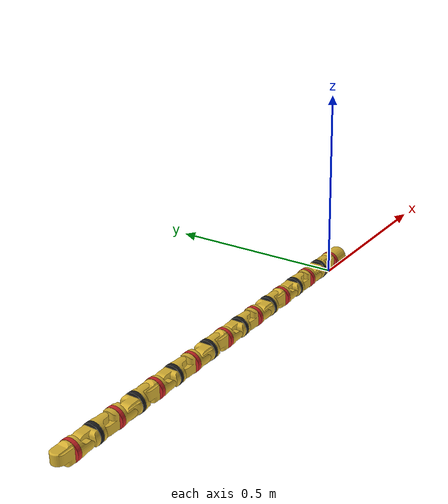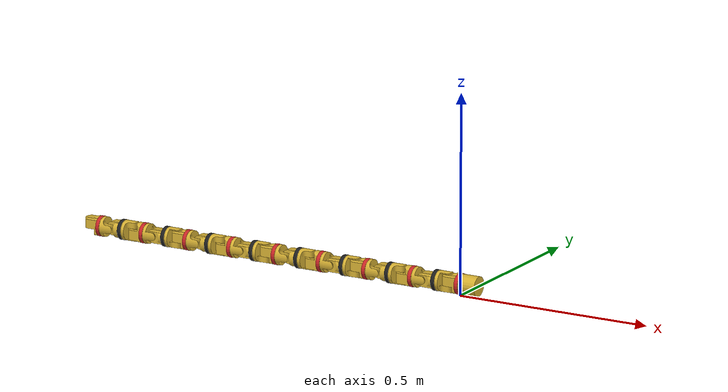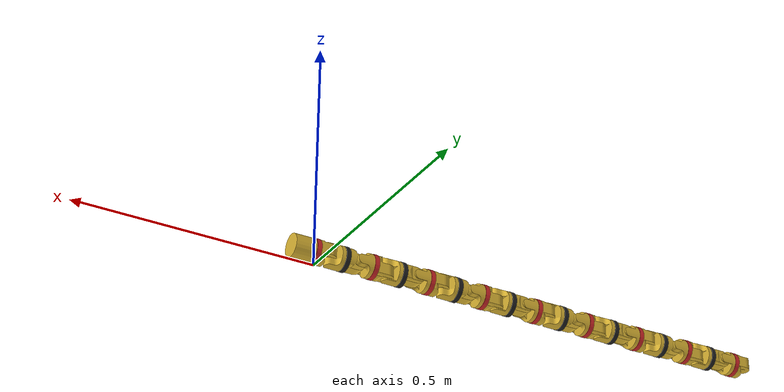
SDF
<?xml version="1.0" ?>

<sdf version="1.6">

  <model name="snake_jzy">

    <link name="module_1">
      <pose>-0.0 0 0.03 0 0 0</pose>
      <inertial>
        <pose>0 0 0 0 0 0</pose>
        <mass>0.1</mass>
        <inertia>
          <ixx>3.38e-05</ixx>
          <ixy>0</ixy>
          <ixz>0</ixz>
          <iyy>4.69e-05</iyy>
          <iyz>0</iyz>
          <izz>4.69e-05</izz>
        </inertia>
      </inertial>
      <collision name="module_1_collision">
        <pose>0 0 0 3.141592653589793 -1.5707963267948966 3.141592653589793</pose>
        <geometry>
	  <cylinder>
            <radius>0.026</radius>
            <length>0.03</length>
          </cylinder>
        </geometry>
      </collision>

      <visual name="module_head_visual">
        <pose>0.025 0 0 3.141592653589793 -1.5707963267948966 3.141592653589793</pose>
        <geometry>
          <cylinder>
            <radius>0.024999999999999998</radius>
            <length>0.05</length>
          </cylinder>
        </geometry>
        <material>
          <script>
	    <name>Gazebo/Gold</name>
          </script>
          <specular>1 1 1 1</specular>
        </material>
      </visual>

      <visual name="module_1_visual">
        <pose>0 0 0 3.141592653589793 -1.5707963267948966 3.141592653589793</pose>
        <geometry>
          <cylinder>
            <radius>0.026</radius>
	    <length>0.01</length>
          </cylinder>
        </geometry>
        <material>
          <script>

              <name>Gazebo/Red</name>

          </script>
          <specular>1 1 1 1</specular>
        </material>
      </visual>

      <visual name="module_1_visual_mesh_i">
        <pose>-0.03 0 0 0 3.141592653589793 1.5707963267948966</pose>
        <geometry>
          <mesh>
            <uri>/home/li/Downloads/wheel_less_snake/src/wl_snake_description/meshes/rotary_input.dae</uri>
          </mesh>
        </geometry>
        <material>
          <script>
            <name>Gazebo/Gold</name>
          </script>
          <specular>1 1 1 1</specular>
        </material>
      </visual>

      <sensor type="camera" name="snake_camera">
        <pose>0.15 0 0 0 -0 0</pose>
        <update_rate>30.0</update_rate>
        <always_on>1</always_on>
        <visualize>0</visualize>
        <topic>/snake/eye</topic>
        <camera name="snake_eye">
          <horizontal_fov>1.5707963267948966</horizontal_fov>
          <image>
            <width>320</width>
            <height>240</height>
            <format>R8G8B8</format>
          </image>
          <clip>
            <near>0.01</near>
            <far>100</far>
          </clip>
          <noise>
            <type>gaussian</type>
            <!-- Noise is sampled independently per pixel on each frame.
                 That pixel's noise value is added to each of its color
                 channels, which at that point lie in the range [0,1]. -->
            <mean>0.0</mean>
            <stddev>0.007</stddev>
          </noise>
        </camera>
        <plugin name="camera_controller" filename="libgazebo_ros_camera.so">
          <alwaysOn>true</alwaysOn>
          <updateRate>0.0</updateRate>
          <cameraName>snake/camera</cameraName>
          <imageTopicName>image_raw</imageTopicName>
          <cameraInfoTopicName>camera_info</cameraInfoTopicName>
          <frameName>camera_link</frameName>
          <hackBaseline>0.07</hackBaseline>
          <distortionK1>0.0</distortionK1>
          <distortionK2>0.0</distortionK2>
          <distortionK3>0.0</distortionK3>
          <distortionT1>0.0</distortionT1>
          <distortionT2>0.0</distortionT2>
        </plugin>
      </sensor>

      <sensor name='dvs' type='camera'>
        <pose>0.15 0 0 0 -0 0</pose>
        <visualize>1</visualize>
        <camera name='__default__'>
          <horizontal_fov>1.5707963267948966</horizontal_fov>
          <image>
            <width>128</width>
            <height>128</height>
          </image>
          <clip>
            <near>0.01</near>
            <far>100</far>
          </clip>
        </camera>
        <always_on>1</always_on>
        <update_rate>60</update_rate>
        <visualize>0</visualize>
        <plugin name='dvs_controller' filename='libgazebo_dvs_plugin.so'>
          <cameraName>dvs128</cameraName>
          <robotNamespace>head</robotNamespace>
          <eventThreshold>10</eventThreshold>
          <cameraInfoTopicName>dvs_info</cameraInfoTopicName>
        </plugin>
        <pose>0 0 0 0 -0 0</pose>
      </sensor>
      <sensor name='depthcamera' type='depth'>
        <pose>0 0 0 0 0 0</pose>
        <visualize>1</visualize>
        <camera name='depthcamera'>
          <horizontal_fov>1.047198</horizontal_fov>
          <image>
            <width>640</width>
            <height>480</height>
            <format>R8G8B8</format>
          </image>
          <clip>
            <near>0.05</near>
            <far>3</far>
          </clip>
        </camera>
         <plugin name="depth_plugin" filename="libgazebo_ros_openni_kinect.so">
          <baseline>0.2</baseline>
          <alwaysOn>true</alwaysOn>
          <updateRate>0.0</updateRate>
          <cameraName>camera_ir</cameraName>
          <imageTopicName>/camera/depth/image_raw</imageTopicName>
          <cameraInfoTopicName>/camera/depth/camera_info</cameraInfoTopicName>
          <depthImageTopicName>/camera/depth/image_raw</depthImageTopicName>
          <depthImageInfoTopicName>/camera/depth/camera_info</depthImageInfoTopicName>
          <pointCloudTopicName>/camera/depth/points</pointCloudTopicName>
          <frameName>camera_link</frameName>
          <pointCloudCutoff>0.05</pointCloudCutoff>
          <distortionK1>0</distortionK1>
          <distortionK2>0</distortionK2>
          <distortionK3>0</distortionK3>
          <distortionT1>0</distortionT1>
          <distortionT2>0</distortionT2>
          <CxPrime>0</CxPrime>
          <Cx>0</Cx>
          <Cy>0</Cy>
          <focalLength>0</focalLength>
          <hackBaseline>0</hackBaseline>
        </plugin>
      </sensor>
      <sensor name="laser" type="ray">
        <pose>0 0 0 0 0 0</pose>
        <ray>
          <scan>
            <horizontal>
              <samples>640</samples>
              <resolution>1</resolution>
              <min_angle>0</min_angle>
              <max_angle>1.57</max_angle>
            </horizontal>
          </scan>
          <range>
            <min>0.08</min>
            <max>10</max>
            <resolution>0.01</resolution>
          </range>
          <noise>
            <type>gaussian</type>
            <mean>0.0</mean>
            <stddev>0.01</stddev>
          </noise>
        </ray>
        <plugin name="laser" filename="libgazebo_ros_laser.so">
          <topicName>/scan</topicName>
        </plugin>
        <always_on>1</always_on>
        <update_rate>30</update_rate>
        <visualize>true</visualize>
      </sensor>

    </link>

    <joint name="joint_1" type="revolute">
      <parent>module_1</parent>
      <child>module_2</child>
      <pose>0.035 0 0 0.0 -0 0</pose>
      <axis>
        <xyz>0 0 1</xyz>
        <limit>
          <lower>-1.5707963267948966</lower>
          <upper>1.5707963267948966</upper>
          <effort>7.0</effort>
          <velocity>2.208932</velocity>
        </limit>
        <dynamics>
	  <friction>0.2</friction>
	</dynamics>
      </axis>
    </joint>

    <link name="module_2">
      <pose>-0.064 0 0.03 0 0 0</pose>
      <inertial>
        <pose>0 0 0 0 0 0</pose>
        <mass>0.1</mass>
        <inertia>
          <ixx>3.38e-05</ixx>
          <ixy>0</ixy>
          <ixz>0</ixz>
          <iyy>4.69e-05</iyy>
          <iyz>0</iyz>
          <izz>4.69e-05</izz>
        </inertia>
      </inertial>
      <collision name="module_2_collision">
        <pose>0 0 0 3.141592653589793 -1.5707963267948966 3.141592653589793</pose>
        <geometry>
	  <cylinder>
            <radius>0.026</radius>
            <length>0.03</length>
          </cylinder>
        </geometry>
      </collision>

      <visual name="module_2_visual">
        <pose>0 0 0 3.141592653589793 -1.5707963267948966 3.141592653589793</pose>
        <geometry>
          <cylinder>
            <radius>0.026</radius>
	    <length>0.01</length>
          </cylinder>
        </geometry>
        <material>
          <script>

	      <name>Gazebo/Black</name>

          </script>
          <specular>1 1 1 1</specular>
        </material>
      </visual>

      <visual name="module_2_visual_mesh_i">
        <pose>-0.03 0 0 0 1.5707963267948966 1.5707963267948966</pose>
        <geometry>
          <mesh>
            <uri>/home/li/Downloads/wheel_less_snake/src/wl_snake_description/meshes/rotary_input.dae</uri>
          </mesh>
        </geometry>
        <material>
          <script>
            <name>Gazebo/Gold</name>
          </script>
          <specular>1 1 1 1</specular>
        </material>
      </visual>

      <visual name="module_2_visual_mesh_o">
        <pose>0.032 0 0 0 3.141592653589793 1.5707963267948966</pose>
        <geometry>
          <mesh>
            <uri>/home/li/Downloads/wheel_less_snake/src/wl_snake_description/meshes/rotary_output.dae</uri>
          </mesh>
        </geometry>
        <material>
          <script>
            <name>Gazebo/Gold</name>
          </script>
          <specular>1 1 1 1</specular>
        </material>
      </visual>

    </link>

    <joint name="joint_2" type="revolute">
      <parent>module_2</parent>
      <child>module_3</child>
      <pose>0.035 0 0 1.5707963267948966 -0 0</pose>
      <axis>
        <xyz>0 0 1</xyz>
        <limit>
          <lower>-1.5707963267948966</lower>
          <upper>1.5707963267948966</upper>
          <effort>7.0</effort>
          <velocity>2.208932</velocity>
        </limit>
        <dynamics>
	  <friction>0.2</friction>
	</dynamics>
      </axis>
    </joint>

    <link name="module_3">
      <pose>-0.128 0 0.03 0 0 0</pose>
      <inertial>
        <pose>0 0 0 0 0 0</pose>
        <mass>0.1</mass>
        <inertia>
          <ixx>3.38e-05</ixx>
          <ixy>0</ixy>
          <ixz>0</ixz>
          <iyy>4.69e-05</iyy>
          <iyz>0</iyz>
          <izz>4.69e-05</izz>
        </inertia>
      </inertial>
      <collision name="module_3_collision">
        <pose>0 0 0 3.141592653589793 -1.5707963267948966 3.141592653589793</pose>
        <geometry>
	  <cylinder>
            <radius>0.026</radius>
            <length>0.03</length>
          </cylinder>
        </geometry>
      </collision>

      <visual name="module_3_visual">
        <pose>0 0 0 3.141592653589793 -1.5707963267948966 3.141592653589793</pose>
        <geometry>
          <cylinder>
            <radius>0.026</radius>
	    <length>0.01</length>
          </cylinder>
        </geometry>
        <material>
          <script>

              <name>Gazebo/Red</name>

          </script>
          <specular>1 1 1 1</specular>
        </material>
      </visual>

      <visual name="module_3_visual_mesh_i">
        <pose>-0.03 0 0 0 0.0 1.5707963267948966</pose>
        <geometry>
          <mesh>
            <uri>/home/li/Downloads/wheel_less_snake/src/wl_snake_description/meshes/rotary_input.dae</uri>
          </mesh>
        </geometry>
        <material>
          <script>
            <name>Gazebo/Gold</name>
          </script>
          <specular>1 1 1 1</specular>
        </material>
      </visual>

      <visual name="module_3_visual_mesh_o">
        <pose>0.032 0 0 0 1.5707963267948966 1.5707963267948966</pose>
        <geometry>
          <mesh>
            <uri>/home/li/Downloads/wheel_less_snake/src/wl_snake_description/meshes/rotary_output.dae</uri>
          </mesh>
        </geometry>
        <material>
          <script>
            <name>Gazebo/Gold</name>
          </script>
          <specular>1 1 1 1</specular>
        </material>
      </visual>

    </link>

    <joint name="joint_3" type="revolute">
      <parent>module_3</parent>
      <child>module_4</child>
      <pose>0.035 0 0 3.141592653589793 -0 0</pose>
      <axis>
        <xyz>0 0 1</xyz>
        <limit>
          <lower>-1.5707963267948966</lower>
          <upper>1.5707963267948966</upper>
          <effort>7.0</effort>
          <velocity>2.208932</velocity>
        </limit>
        <dynamics>
	  <friction>0.2</friction>
	</dynamics>
      </axis>
    </joint>

    <link name="module_4">
      <pose>-0.192 0 0.03 0 0 0</pose>
      <inertial>
        <pose>0 0 0 0 0 0</pose>
        <mass>0.1</mass>
        <inertia>
          <ixx>3.38e-05</ixx>
          <ixy>0</ixy>
          <ixz>0</ixz>
          <iyy>4.69e-05</iyy>
          <iyz>0</iyz>
          <izz>4.69e-05</izz>
        </inertia>
      </inertial>
      <collision name="module_4_collision">
        <pose>0 0 0 3.141592653589793 -1.5707963267948966 3.141592653589793</pose>
        <geometry>
	  <cylinder>
            <radius>0.026</radius>
            <length>0.03</length>
          </cylinder>
        </geometry>
      </collision>

      <visual name="module_4_visual">
        <pose>0 0 0 3.141592653589793 -1.5707963267948966 3.141592653589793</pose>
        <geometry>
          <cylinder>
            <radius>0.026</radius>
	    <length>0.01</length>
          </cylinder>
        </geometry>
        <material>
          <script>

	      <name>Gazebo/Black</name>

          </script>
          <specular>1 1 1 1</specular>
        </material>
      </visual>

      <visual name="module_4_visual_mesh_i">
        <pose>-0.03 0 0 0 -1.5707963267948966 1.5707963267948966</pose>
        <geometry>
          <mesh>
            <uri>/home/li/Downloads/wheel_less_snake/src/wl_snake_description/meshes/rotary_input.dae</uri>
          </mesh>
        </geometry>
        <material>
          <script>
            <name>Gazebo/Gold</name>
          </script>
          <specular>1 1 1 1</specular>
        </material>
      </visual>

      <visual name="module_4_visual_mesh_o">
        <pose>0.032 0 0 0 0.0 1.5707963267948966</pose>
        <geometry>
          <mesh>
            <uri>/home/li/Downloads/wheel_less_snake/src/wl_snake_description/meshes/rotary_output.dae</uri>
          </mesh>
        </geometry>
        <material>
          <script>
            <name>Gazebo/Gold</name>
          </script>
          <specular>1 1 1 1</specular>
        </material>
      </visual>

    </link>

    <joint name="joint_4" type="revolute">
      <parent>module_4</parent>
      <child>module_5</child>
      <pose>0.035 0 0 4.71238898038469 -0 0</pose>
      <axis>
        <xyz>0 0 1</xyz>
        <limit>
          <lower>-1.5707963267948966</lower>
          <upper>1.5707963267948966</upper>
          <effort>7.0</effort>
          <velocity>2.208932</velocity>
        </limit>
        <dynamics>
	  <friction>0.2</friction>
	</dynamics>
      </axis>
    </joint>

    <link name="module_5">
      <pose>-0.256 0 0.03 0 0 0</pose>
      <inertial>
        <pose>0 0 0 0 0 0</pose>
        <mass>0.1</mass>
        <inertia>
          <ixx>3.38e-05</ixx>
          <ixy>0</ixy>
          <ixz>0</ixz>
          <iyy>4.69e-05</iyy>
          <iyz>0</iyz>
          <izz>4.69e-05</izz>
        </inertia>
      </inertial>
      <collision name="module_5_collision">
        <pose>0 0 0 3.141592653589793 -1.5707963267948966 3.141592653589793</pose>
        <geometry>
	  <cylinder>
            <radius>0.026</radius>
            <length>0.03</length>
          </cylinder>
        </geometry>
      </collision>

      <visual name="module_5_visual">
        <pose>0 0 0 3.141592653589793 -1.5707963267948966 3.141592653589793</pose>
        <geometry>
          <cylinder>
            <radius>0.026</radius>
	    <length>0.01</length>
          </cylinder>
        </geometry>
        <material>
          <script>

              <name>Gazebo/Red</name>

          </script>
          <specular>1 1 1 1</specular>
        </material>
      </visual>

      <visual name="module_5_visual_mesh_i">
        <pose>-0.03 0 0 0 3.141592653589793 1.5707963267948966</pose>
        <geometry>
          <mesh>
            <uri>/home/li/Downloads/wheel_less_snake/src/wl_snake_description/meshes/rotary_input.dae</uri>
          </mesh>
        </geometry>
        <material>
          <script>
            <name>Gazebo/Gold</name>
          </script>
          <specular>1 1 1 1</specular>
        </material>
      </visual>

      <visual name="module_5_visual_mesh_o">
        <pose>0.032 0 0 0 -1.5707963267948966 1.5707963267948966</pose>
        <geometry>
          <mesh>
            <uri>/home/li/Downloads/wheel_less_snake/src/wl_snake_description/meshes/rotary_output.dae</uri>
          </mesh>
        </geometry>
        <material>
          <script>
            <name>Gazebo/Gold</name>
          </script>
          <specular>1 1 1 1</specular>
        </material>
      </visual>

    </link>

    <joint name="joint_5" type="revolute">
      <parent>module_5</parent>
      <child>module_6</child>
      <pose>0.035 0 0 0.0 -0 0</pose>
      <axis>
        <xyz>0 0 1</xyz>
        <limit>
          <lower>-1.5707963267948966</lower>
          <upper>1.5707963267948966</upper>
          <effort>7.0</effort>
          <velocity>2.208932</velocity>
        </limit>
        <dynamics>
	  <friction>0.2</friction>
	</dynamics>
      </axis>
    </joint>

    <link name="module_6">
      <pose>-0.32 0 0.03 0 0 0</pose>
      <inertial>
        <pose>0 0 0 0 0 0</pose>
        <mass>0.1</mass>
        <inertia>
          <ixx>3.38e-05</ixx>
          <ixy>0</ixy>
          <ixz>0</ixz>
          <iyy>4.69e-05</iyy>
          <iyz>0</iyz>
          <izz>4.69e-05</izz>
        </inertia>
      </inertial>
      <collision name="module_6_collision">
        <pose>0 0 0 3.141592653589793 -1.5707963267948966 3.141592653589793</pose>
        <geometry>
	  <cylinder>
            <radius>0.026</radius>
            <length>0.03</length>
          </cylinder>
        </geometry>
      </collision>

      <visual name="module_6_visual">
        <pose>0 0 0 3.141592653589793 -1.5707963267948966 3.141592653589793</pose>
        <geometry>
          <cylinder>
            <radius>0.026</radius>
	    <length>0.01</length>
          </cylinder>
        </geometry>
        <material>
          <script>

	      <name>Gazebo/Black</name>

          </script>
          <specular>1 1 1 1</specular>
        </material>
      </visual>

      <visual name="module_6_visual_mesh_i">
        <pose>-0.03 0 0 0 1.5707963267948966 1.5707963267948966</pose>
        <geometry>
          <mesh>
            <uri>/home/li/Downloads/wheel_less_snake/src/wl_snake_description/meshes/rotary_input.dae</uri>
          </mesh>
        </geometry>
        <material>
          <script>
            <name>Gazebo/Gold</name>
          </script>
          <specular>1 1 1 1</specular>
        </material>
      </visual>

      <visual name="module_6_visual_mesh_o">
        <pose>0.032 0 0 0 3.141592653589793 1.5707963267948966</pose>
        <geometry>
          <mesh>
            <uri>/home/li/Downloads/wheel_less_snake/src/wl_snake_description/meshes/rotary_output.dae</uri>
          </mesh>
        </geometry>
        <material>
          <script>
            <name>Gazebo/Gold</name>
          </script>
          <specular>1 1 1 1</specular>
        </material>
      </visual>

    </link>

    <joint name="joint_6" type="revolute">
      <parent>module_6</parent>
      <child>module_7</child>
      <pose>0.035 0 0 1.5707963267948966 -0 0</pose>
      <axis>
        <xyz>0 0 1</xyz>
        <limit>
          <lower>-1.5707963267948966</lower>
          <upper>1.5707963267948966</upper>
          <effort>7.0</effort>
          <velocity>2.208932</velocity>
        </limit>
        <dynamics>
	  <friction>0.2</friction>
	</dynamics>
      </axis>
    </joint>

    <link name="module_7">
      <pose>-0.384 0 0.03 0 0 0</pose>
      <inertial>
        <pose>0 0 0 0 0 0</pose>
        <mass>0.1</mass>
        <inertia>
          <ixx>3.38e-05</ixx>
          <ixy>0</ixy>
          <ixz>0</ixz>
          <iyy>4.69e-05</iyy>
          <iyz>0</iyz>
          <izz>4.69e-05</izz>
        </inertia>
      </inertial>
      <collision name="module_7_collision">
        <pose>0 0 0 3.141592653589793 -1.5707963267948966 3.141592653589793</pose>
        <geometry>
	  <cylinder>
            <radius>0.026</radius>
            <length>0.03</length>
          </cylinder>
        </geometry>
      </collision>

      <visual name="module_7_visual">
        <pose>0 0 0 3.141592653589793 -1.5707963267948966 3.141592653589793</pose>
        <geometry>
          <cylinder>
            <radius>0.026</radius>
	    <length>0.01</length>
          </cylinder>
        </geometry>
        <material>
          <script>

              <name>Gazebo/Red</name>

          </script>
          <specular>1 1 1 1</specular>
        </material>
      </visual>

      <visual name="module_7_visual_mesh_i">
        <pose>-0.03 0 0 0 0.0 1.5707963267948966</pose>
        <geometry>
          <mesh>
            <uri>/home/li/Downloads/wheel_less_snake/src/wl_snake_description/meshes/rotary_input.dae</uri>
          </mesh>
        </geometry>
        <material>
          <script>
            <name>Gazebo/Gold</name>
          </script>
          <specular>1 1 1 1</specular>
        </material>
      </visual>

      <visual name="module_7_visual_mesh_o">
        <pose>0.032 0 0 0 1.5707963267948966 1.5707963267948966</pose>
        <geometry>
          <mesh>
            <uri>/home/li/Downloads/wheel_less_snake/src/wl_snake_description/meshes/rotary_output.dae</uri>
          </mesh>
        </geometry>
        <material>
          <script>
            <name>Gazebo/Gold</name>
          </script>
          <specular>1 1 1 1</specular>
        </material>
      </visual>

    </link>

    <joint name="joint_7" type="revolute">
      <parent>module_7</parent>
      <child>module_8</child>
      <pose>0.035 0 0 3.141592653589793 -0 0</pose>
      <axis>
        <xyz>0 0 1</xyz>
        <limit>
          <lower>-1.5707963267948966</lower>
          <upper>1.5707963267948966</upper>
          <effort>7.0</effort>
          <velocity>2.208932</velocity>
        </limit>
        <dynamics>
	  <friction>0.2</friction>
	</dynamics>
      </axis>
    </joint>

    <link name="module_8">
      <pose>-0.448 0 0.03 0 0 0</pose>
      <inertial>
        <pose>0 0 0 0 0 0</pose>
        <mass>0.1</mass>
        <inertia>
          <ixx>3.38e-05</ixx>
          <ixy>0</ixy>
          <ixz>0</ixz>
          <iyy>4.69e-05</iyy>
          <iyz>0</iyz>
          <izz>4.69e-05</izz>
        </inertia>
      </inertial>
      <collision name="module_8_collision">
        <pose>0 0 0 3.141592653589793 -1.5707963267948966 3.141592653589793</pose>
        <geometry>
	  <cylinder>
            <radius>0.026</radius>
            <length>0.03</length>
          </cylinder>
        </geometry>
      </collision>

      <visual name="module_8_visual">
        <pose>0 0 0 3.141592653589793 -1.5707963267948966 3.141592653589793</pose>
        <geometry>
          <cylinder>
            <radius>0.026</radius>
	    <length>0.01</length>
          </cylinder>
        </geometry>
        <material>
          <script>

	      <name>Gazebo/Black</name>

          </script>
          <specular>1 1 1 1</specular>
        </material>
      </visual>

      <visual name="module_8_visual_mesh_i">
        <pose>-0.03 0 0 0 -1.5707963267948966 1.5707963267948966</pose>
        <geometry>
          <mesh>
            <uri>/home/li/Downloads/wheel_less_snake/src/wl_snake_description/meshes/rotary_input.dae</uri>
          </mesh>
        </geometry>
        <material>
          <script>
            <name>Gazebo/Gold</name>
          </script>
          <specular>1 1 1 1</specular>
        </material>
      </visual>

      <visual name="module_8_visual_mesh_o">
        <pose>0.032 0 0 0 0.0 1.5707963267948966</pose>
        <geometry>
          <mesh>
            <uri>/home/li/Downloads/wheel_less_snake/src/wl_snake_description/meshes/rotary_output.dae</uri>
          </mesh>
        </geometry>
        <material>
          <script>
            <name>Gazebo/Gold</name>
          </script>
          <specular>1 1 1 1</specular>
        </material>
      </visual>

    </link>

    <joint name="joint_8" type="revolute">
      <parent>module_8</parent>
      <child>module_9</child>
      <pose>0.035 0 0 4.71238898038469 -0 0</pose>
      <axis>
        <xyz>0 0 1</xyz>
        <limit>
          <lower>-1.5707963267948966</lower>
          <upper>1.5707963267948966</upper>
          <effort>7.0</effort>
          <velocity>2.208932</velocity>
        </limit>
        <dynamics>
	  <friction>0.2</friction>
	</dynamics>
      </axis>
    </joint>

    <link name="module_9">
      <pose>-0.512 0 0.03 0 0 0</pose>
      <inertial>
        <pose>0 0 0 0 0 0</pose>
        <mass>0.1</mass>
        <inertia>
          <ixx>3.38e-05</ixx>
          <ixy>0</ixy>
          <ixz>0</ixz>
          <iyy>4.69e-05</iyy>
          <iyz>0</iyz>
          <izz>4.69e-05</izz>
        </inertia>
      </inertial>
      <collision name="module_9_collision">
        <pose>0 0 0 3.141592653589793 -1.5707963267948966 3.141592653589793</pose>
        <geometry>
	  <cylinder>
            <radius>0.026</radius>
            <length>0.03</length>
          </cylinder>
        </geometry>
      </collision>

      <visual name="module_9_visual">
        <pose>0 0 0 3.141592653589793 -1.5707963267948966 3.141592653589793</pose>
        <geometry>
          <cylinder>
            <radius>0.026</radius>
	    <length>0.01</length>
          </cylinder>
        </geometry>
        <material>
          <script>

              <name>Gazebo/Red</name>

          </script>
          <specular>1 1 1 1</specular>
        </material>
      </visual>

      <visual name="module_9_visual_mesh_i">
        <pose>-0.03 0 0 0 3.141592653589793 1.5707963267948966</pose>
        <geometry>
          <mesh>
            <uri>/home/li/Downloads/wheel_less_snake/src/wl_snake_description/meshes/rotary_input.dae</uri>
          </mesh>
        </geometry>
        <material>
          <script>
            <name>Gazebo/Gold</name>
          </script>
          <specular>1 1 1 1</specular>
        </material>
      </visual>

      <visual name="module_9_visual_mesh_o">
        <pose>0.032 0 0 0 -1.5707963267948966 1.5707963267948966</pose>
        <geometry>
          <mesh>
            <uri>/home/li/Downloads/wheel_less_snake/src/wl_snake_description/meshes/rotary_output.dae</uri>
          </mesh>
        </geometry>
        <material>
          <script>
            <name>Gazebo/Gold</name>
          </script>
          <specular>1 1 1 1</specular>
        </material>
      </visual>

    </link>

    <joint name="joint_9" type="revolute">
      <parent>module_9</parent>
      <child>module_10</child>
      <pose>0.035 0 0 0.0 -0 0</pose>
      <axis>
        <xyz>0 0 1</xyz>
        <limit>
          <lower>-1.5707963267948966</lower>
          <upper>1.5707963267948966</upper>
          <effort>7.0</effort>
          <velocity>2.208932</velocity>
        </limit>
        <dynamics>
	  <friction>0.2</friction>
	</dynamics>
      </axis>
    </joint>

    <link name="module_10">
      <pose>-0.5760000000000001 0 0.03 0 0 0</pose>
      <inertial>
        <pose>0 0 0 0 0 0</pose>
        <mass>0.1</mass>
        <inertia>
          <ixx>3.38e-05</ixx>
          <ixy>0</ixy>
          <ixz>0</ixz>
          <iyy>4.69e-05</iyy>
          <iyz>0</iyz>
          <izz>4.69e-05</izz>
        </inertia>
      </inertial>
      <collision name="module_10_collision">
        <pose>0 0 0 3.141592653589793 -1.5707963267948966 3.141592653589793</pose>
        <geometry>
	  <cylinder>
            <radius>0.026</radius>
            <length>0.03</length>
          </cylinder>
        </geometry>
      </collision>

      <visual name="module_10_visual">
        <pose>0 0 0 3.141592653589793 -1.5707963267948966 3.141592653589793</pose>
        <geometry>
          <cylinder>
            <radius>0.026</radius>
	    <length>0.01</length>
          </cylinder>
        </geometry>
        <material>
          <script>

	      <name>Gazebo/Black</name>

          </script>
          <specular>1 1 1 1</specular>
        </material>
      </visual>

      <visual name="module_10_visual_mesh_i">
        <pose>-0.03 0 0 0 1.5707963267948966 1.5707963267948966</pose>
        <geometry>
          <mesh>
            <uri>/home/li/Downloads/wheel_less_snake/src/wl_snake_description/meshes/rotary_input.dae</uri>
          </mesh>
        </geometry>
        <material>
          <script>
            <name>Gazebo/Gold</name>
          </script>
          <specular>1 1 1 1</specular>
        </material>
      </visual>

      <visual name="module_10_visual_mesh_o">
        <pose>0.032 0 0 0 3.141592653589793 1.5707963267948966</pose>
        <geometry>
          <mesh>
            <uri>/home/li/Downloads/wheel_less_snake/src/wl_snake_description/meshes/rotary_output.dae</uri>
          </mesh>
        </geometry>
        <material>
          <script>
            <name>Gazebo/Gold</name>
          </script>
          <specular>1 1 1 1</specular>
        </material>
      </visual>

    </link>

    <joint name="joint_10" type="revolute">
      <parent>module_10</parent>
      <child>module_11</child>
      <pose>0.035 0 0 1.5707963267948966 -0 0</pose>
      <axis>
        <xyz>0 0 1</xyz>
        <limit>
          <lower>-1.5707963267948966</lower>
          <upper>1.5707963267948966</upper>
          <effort>7.0</effort>
          <velocity>2.208932</velocity>
        </limit>
        <dynamics>
	  <friction>0.2</friction>
	</dynamics>
      </axis>
    </joint>

    <link name="module_11">
      <pose>-0.64 0 0.03 0 0 0</pose>
      <inertial>
        <pose>0 0 0 0 0 0</pose>
        <mass>0.1</mass>
        <inertia>
          <ixx>3.38e-05</ixx>
          <ixy>0</ixy>
          <ixz>0</ixz>
          <iyy>4.69e-05</iyy>
          <iyz>0</iyz>
          <izz>4.69e-05</izz>
        </inertia>
      </inertial>
      <collision name="module_11_collision">
        <pose>0 0 0 3.141592653589793 -1.5707963267948966 3.141592653589793</pose>
        <geometry>
	  <cylinder>
            <radius>0.026</radius>
            <length>0.03</length>
          </cylinder>
        </geometry>
      </collision>

      <visual name="module_11_visual">
        <pose>0 0 0 3.141592653589793 -1.5707963267948966 3.141592653589793</pose>
        <geometry>
          <cylinder>
            <radius>0.026</radius>
	    <length>0.01</length>
          </cylinder>
        </geometry>
        <material>
          <script>

              <name>Gazebo/Red</name>

          </script>
          <specular>1 1 1 1</specular>
        </material>
      </visual>

      <visual name="module_11_visual_mesh_i">
        <pose>-0.03 0 0 0 0.0 1.5707963267948966</pose>
        <geometry>
          <mesh>
            <uri>/home/li/Downloads/wheel_less_snake/src/wl_snake_description/meshes/rotary_input.dae</uri>
          </mesh>
        </geometry>
        <material>
          <script>
            <name>Gazebo/Gold</name>
          </script>
          <specular>1 1 1 1</specular>
        </material>
      </visual>

      <visual name="module_11_visual_mesh_o">
        <pose>0.032 0 0 0 1.5707963267948966 1.5707963267948966</pose>
        <geometry>
          <mesh>
            <uri>/home/li/Downloads/wheel_less_snake/src/wl_snake_description/meshes/rotary_output.dae</uri>
          </mesh>
        </geometry>
        <material>
          <script>
            <name>Gazebo/Gold</name>
          </script>
          <specular>1 1 1 1</specular>
        </material>
      </visual>

    </link>

    <joint name="joint_11" type="revolute">
      <parent>module_11</parent>
      <child>module_12</child>
      <pose>0.035 0 0 3.141592653589793 -0 0</pose>
      <axis>
        <xyz>0 0 1</xyz>
        <limit>
          <lower>-1.5707963267948966</lower>
          <upper>1.5707963267948966</upper>
          <effort>7.0</effort>
          <velocity>2.208932</velocity>
        </limit>
        <dynamics>
	  <friction>0.2</friction>
	</dynamics>
      </axis>
    </joint>

    <link name="module_12">
      <pose>-0.704 0 0.03 0 0 0</pose>
      <inertial>
        <pose>0 0 0 0 0 0</pose>
        <mass>0.1</mass>
        <inertia>
          <ixx>3.38e-05</ixx>
          <ixy>0</ixy>
          <ixz>0</ixz>
          <iyy>4.69e-05</iyy>
          <iyz>0</iyz>
          <izz>4.69e-05</izz>
        </inertia>
      </inertial>
      <collision name="module_12_collision">
        <pose>0 0 0 3.141592653589793 -1.5707963267948966 3.141592653589793</pose>
        <geometry>
	  <cylinder>
            <radius>0.026</radius>
            <length>0.03</length>
          </cylinder>
        </geometry>
      </collision>

      <visual name="module_12_visual">
        <pose>0 0 0 3.141592653589793 -1.5707963267948966 3.141592653589793</pose>
        <geometry>
          <cylinder>
            <radius>0.026</radius>
	    <length>0.01</length>
          </cylinder>
        </geometry>
        <material>
          <script>

	      <name>Gazebo/Black</name>

          </script>
          <specular>1 1 1 1</specular>
        </material>
      </visual>

      <visual name="module_12_visual_mesh_i">
        <pose>-0.03 0 0 0 -1.5707963267948966 1.5707963267948966</pose>
        <geometry>
          <mesh>
            <uri>/home/li/Downloads/wheel_less_snake/src/wl_snake_description/meshes/rotary_input.dae</uri>
          </mesh>
        </geometry>
        <material>
          <script>
            <name>Gazebo/Gold</name>
          </script>
          <specular>1 1 1 1</specular>
        </material>
      </visual>

      <visual name="module_12_visual_mesh_o">
        <pose>0.032 0 0 0 0.0 1.5707963267948966</pose>
        <geometry>
          <mesh>
            <uri>/home/li/Downloads/wheel_less_snake/src/wl_snake_description/meshes/rotary_output.dae</uri>
          </mesh>
        </geometry>
        <material>
          <script>
            <name>Gazebo/Gold</name>
          </script>
          <specular>1 1 1 1</specular>
        </material>
      </visual>

    </link>

    <joint name="joint_12" type="revolute">
      <parent>module_12</parent>
      <child>module_13</child>
      <pose>0.035 0 0 4.71238898038469 -0 0</pose>
      <axis>
        <xyz>0 0 1</xyz>
        <limit>
          <lower>-1.5707963267948966</lower>
          <upper>1.5707963267948966</upper>
          <effort>7.0</effort>
          <velocity>2.208932</velocity>
        </limit>
        <dynamics>
	  <friction>0.2</friction>
	</dynamics>
      </axis>
    </joint>

    <link name="module_13">
      <pose>-0.768 0 0.03 0 0 0</pose>
      <inertial>
        <pose>0 0 0 0 0 0</pose>
        <mass>0.1</mass>
        <inertia>
          <ixx>3.38e-05</ixx>
          <ixy>0</ixy>
          <ixz>0</ixz>
          <iyy>4.69e-05</iyy>
          <iyz>0</iyz>
          <izz>4.69e-05</izz>
        </inertia>
      </inertial>
      <collision name="module_13_collision">
        <pose>0 0 0 3.141592653589793 -1.5707963267948966 3.141592653589793</pose>
        <geometry>
	  <cylinder>
            <radius>0.026</radius>
            <length>0.03</length>
          </cylinder>
        </geometry>
      </collision>

      <visual name="module_13_visual">
        <pose>0 0 0 3.141592653589793 -1.5707963267948966 3.141592653589793</pose>
        <geometry>
          <cylinder>
            <radius>0.026</radius>
	    <length>0.01</length>
          </cylinder>
        </geometry>
        <material>
          <script>

              <name>Gazebo/Red</name>

          </script>
          <specular>1 1 1 1</specular>
        </material>
      </visual>

      <visual name="module_13_visual_mesh_i">
        <pose>-0.03 0 0 0 3.141592653589793 1.5707963267948966</pose>
        <geometry>
          <mesh>
            <uri>/home/li/Downloads/wheel_less_snake/src/wl_snake_description/meshes/rotary_input.dae</uri>
          </mesh>
        </geometry>
        <material>
          <script>
            <name>Gazebo/Gold</name>
          </script>
          <specular>1 1 1 1</specular>
        </material>
      </visual>

      <visual name="module_13_visual_mesh_o">
        <pose>0.032 0 0 0 -1.5707963267948966 1.5707963267948966</pose>
        <geometry>
          <mesh>
            <uri>/home/li/Downloads/wheel_less_snake/src/wl_snake_description/meshes/rotary_output.dae</uri>
          </mesh>
        </geometry>
        <material>
          <script>
            <name>Gazebo/Gold</name>
          </script>
          <specular>1 1 1 1</specular>
        </material>
      </visual>

    </link>

    <joint name="joint_13" type="revolute">
      <parent>module_13</parent>
      <child>module_14</child>
      <pose>0.035 0 0 0.0 -0 0</pose>
      <axis>
        <xyz>0 0 1</xyz>
        <limit>
          <lower>-1.5707963267948966</lower>
          <upper>1.5707963267948966</upper>
          <effort>7.0</effort>
          <velocity>2.208932</velocity>
        </limit>
        <dynamics>
	  <friction>0.2</friction>
	</dynamics>
      </axis>
    </joint>

    <link name="module_14">
      <pose>-0.8320000000000001 0 0.03 0 0 0</pose>
      <inertial>
        <pose>0 0 0 0 0 0</pose>
        <mass>0.1</mass>
        <inertia>
          <ixx>3.38e-05</ixx>
          <ixy>0</ixy>
          <ixz>0</ixz>
          <iyy>4.69e-05</iyy>
          <iyz>0</iyz>
          <izz>4.69e-05</izz>
        </inertia>
      </inertial>
      <collision name="module_14_collision">
        <pose>0 0 0 3.141592653589793 -1.5707963267948966 3.141592653589793</pose>
        <geometry>
	  <cylinder>
            <radius>0.026</radius>
            <length>0.03</length>
          </cylinder>
        </geometry>
      </collision>

      <visual name="module_14_visual">
        <pose>0 0 0 3.141592653589793 -1.5707963267948966 3.141592653589793</pose>
        <geometry>
          <cylinder>
            <radius>0.026</radius>
	    <length>0.01</length>
          </cylinder>
        </geometry>
        <material>
          <script>

	      <name>Gazebo/Black</name>

          </script>
          <specular>1 1 1 1</specular>
        </material>
      </visual>

      <visual name="module_14_visual_mesh_i">
        <pose>-0.03 0 0 0 1.5707963267948966 1.5707963267948966</pose>
        <geometry>
          <mesh>
            <uri>/home/li/Downloads/wheel_less_snake/src/wl_snake_description/meshes/rotary_input.dae</uri>
          </mesh>
        </geometry>
        <material>
          <script>
            <name>Gazebo/Gold</name>
          </script>
          <specular>1 1 1 1</specular>
        </material>
      </visual>

      <visual name="module_14_visual_mesh_o">
        <pose>0.032 0 0 0 3.141592653589793 1.5707963267948966</pose>
        <geometry>
          <mesh>
            <uri>/home/li/Downloads/wheel_less_snake/src/wl_snake_description/meshes/rotary_output.dae</uri>
          </mesh>
        </geometry>
        <material>
          <script>
            <name>Gazebo/Gold</name>
          </script>
          <specular>1 1 1 1</specular>
        </material>
      </visual>

    </link>

    <joint name="joint_14" type="revolute">
      <parent>module_14</parent>
      <child>module_15</child>
      <pose>0.035 0 0 1.5707963267948966 -0 0</pose>
      <axis>
        <xyz>0 0 1</xyz>
        <limit>
          <lower>-1.5707963267948966</lower>
          <upper>1.5707963267948966</upper>
          <effort>7.0</effort>
          <velocity>2.208932</velocity>
        </limit>
        <dynamics>
	  <friction>0.2</friction>
	</dynamics>
      </axis>
    </joint>

    <link name="module_15">
      <pose>-0.896 0 0.03 0 0 0</pose>
      <inertial>
        <pose>0 0 0 0 0 0</pose>
        <mass>0.1</mass>
        <inertia>
          <ixx>3.38e-05</ixx>
          <ixy>0</ixy>
          <ixz>0</ixz>
          <iyy>4.69e-05</iyy>
          <iyz>0</iyz>
          <izz>4.69e-05</izz>
        </inertia>
      </inertial>
      <collision name="module_15_collision">
        <pose>0 0 0 3.141592653589793 -1.5707963267948966 3.141592653589793</pose>
        <geometry>
	  <cylinder>
            <radius>0.026</radius>
            <length>0.03</length>
          </cylinder>
        </geometry>
      </collision>

      <visual name="module_15_visual">
        <pose>0 0 0 3.141592653589793 -1.5707963267948966 3.141592653589793</pose>
        <geometry>
          <cylinder>
            <radius>0.026</radius>
	    <length>0.01</length>
          </cylinder>
        </geometry>
        <material>
          <script>

              <name>Gazebo/Red</name>

          </script>
          <specular>1 1 1 1</specular>
        </material>
      </visual>

      <visual name="module_15_visual_mesh_i">
        <pose>-0.03 0 0 0 0.0 1.5707963267948966</pose>
        <geometry>
          <mesh>
            <uri>/home/li/Downloads/wheel_less_snake/src/wl_snake_description/meshes/rotary_input.dae</uri>
          </mesh>
        </geometry>
        <material>
          <script>
            <name>Gazebo/Gold</name>
          </script>
          <specular>1 1 1 1</specular>
        </material>
      </visual>

      <visual name="module_15_visual_mesh_o">
        <pose>0.032 0 0 0 1.5707963267948966 1.5707963267948966</pose>
        <geometry>
          <mesh>
            <uri>/home/li/Downloads/wheel_less_snake/src/wl_snake_description/meshes/rotary_output.dae</uri>
          </mesh>
        </geometry>
        <material>
          <script>
            <name>Gazebo/Gold</name>
          </script>
          <specular>1 1 1 1</specular>
        </material>
      </visual>

    </link>

    <joint name="joint_15" type="revolute">
      <parent>module_15</parent>
      <child>module_16</child>
      <pose>0.035 0 0 3.141592653589793 -0 0</pose>
      <axis>
        <xyz>0 0 1</xyz>
        <limit>
          <lower>-1.5707963267948966</lower>
          <upper>1.5707963267948966</upper>
          <effort>7.0</effort>
          <velocity>2.208932</velocity>
        </limit>
        <dynamics>
	  <friction>0.2</friction>
	</dynamics>
      </axis>
    </joint>

    <link name="module_16">
      <pose>-0.96 0 0.03 0 0 0</pose>
      <inertial>
        <pose>0 0 0 0 0 0</pose>
        <mass>0.1</mass>
        <inertia>
          <ixx>3.38e-05</ixx>
          <ixy>0</ixy>
          <ixz>0</ixz>
          <iyy>4.69e-05</iyy>
          <iyz>0</iyz>
          <izz>4.69e-05</izz>
        </inertia>
      </inertial>
      <collision name="module_16_collision">
        <pose>0 0 0 3.141592653589793 -1.5707963267948966 3.141592653589793</pose>
        <geometry>
	  <cylinder>
            <radius>0.026</radius>
            <length>0.03</length>
          </cylinder>
        </geometry>
      </collision>

      <visual name="module_16_visual">
        <pose>0 0 0 3.141592653589793 -1.5707963267948966 3.141592653589793</pose>
        <geometry>
          <cylinder>
            <radius>0.026</radius>
	    <length>0.01</length>
          </cylinder>
        </geometry>
        <material>
          <script>

	      <name>Gazebo/Black</name>

          </script>
          <specular>1 1 1 1</specular>
        </material>
      </visual>

      <visual name="module_16_visual_mesh_i">
        <pose>-0.03 0 0 0 -1.5707963267948966 1.5707963267948966</pose>
        <geometry>
          <mesh>
            <uri>/home/li/Downloads/wheel_less_snake/src/wl_snake_description/meshes/rotary_input.dae</uri>
          </mesh>
        </geometry>
        <material>
          <script>
            <name>Gazebo/Gold</name>
          </script>
          <specular>1 1 1 1</specular>
        </material>
      </visual>

      <visual name="module_16_visual_mesh_o">
        <pose>0.032 0 0 0 0.0 1.5707963267948966</pose>
        <geometry>
          <mesh>
            <uri>/home/li/Downloads/wheel_less_snake/src/wl_snake_description/meshes/rotary_output.dae</uri>
          </mesh>
        </geometry>
        <material>
          <script>
            <name>Gazebo/Gold</name>
          </script>
          <specular>1 1 1 1</specular>
        </material>
      </visual>

    </link>

    <joint name="joint_16" type="revolute">
      <parent>module_16</parent>
      <child>module_17</child>
      <pose>0.035 0 0 4.71238898038469 -0 0</pose>
      <axis>
        <xyz>0 0 1</xyz>
        <limit>
          <lower>-1.5707963267948966</lower>
          <upper>1.5707963267948966</upper>
          <effort>7.0</effort>
          <velocity>2.208932</velocity>
        </limit>
        <dynamics>
	  <friction>0.2</friction>
	</dynamics>
      </axis>
    </joint>

    <link name="module_17">
      <pose>-1.024 0 0.03 0 0 0</pose>
      <inertial>
        <pose>0 0 0 0 0 0</pose>
        <mass>0.1</mass>
        <inertia>
          <ixx>3.38e-05</ixx>
          <ixy>0</ixy>
          <ixz>0</ixz>
          <iyy>4.69e-05</iyy>
          <iyz>0</iyz>
          <izz>4.69e-05</izz>
        </inertia>
      </inertial>
      <collision name="module_17_collision">
        <pose>0 0 0 3.141592653589793 -1.5707963267948966 3.141592653589793</pose>
        <geometry>
	  <cylinder>
            <radius>0.026</radius>
            <length>0.03</length>
          </cylinder>
        </geometry>
      </collision>

      <visual name="module_17_visual">
        <pose>0 0 0 3.141592653589793 -1.5707963267948966 3.141592653589793</pose>
        <geometry>
          <cylinder>
            <radius>0.026</radius>
	    <length>0.01</length>
          </cylinder>
        </geometry>
        <material>
          <script>

              <name>Gazebo/Red</name>

          </script>
          <specular>1 1 1 1</specular>
        </material>
      </visual>

      <visual name="module_17_visual_mesh_i">
        <pose>-0.03 0 0 0 3.141592653589793 1.5707963267948966</pose>
        <geometry>
          <mesh>
            <uri>/home/li/Downloads/wheel_less_snake/src/wl_snake_description/meshes/rotary_input.dae</uri>
          </mesh>
        </geometry>
        <material>
          <script>
            <name>Gazebo/Gold</name>
          </script>
          <specular>1 1 1 1</specular>
        </material>
      </visual>

      <visual name="module_17_visual_mesh_o">
        <pose>0.032 0 0 0 -1.5707963267948966 1.5707963267948966</pose>
        <geometry>
          <mesh>
            <uri>/home/li/Downloads/wheel_less_snake/src/wl_snake_description/meshes/rotary_output.dae</uri>
          </mesh>
        </geometry>
        <material>
          <script>
            <name>Gazebo/Gold</name>
          </script>
          <specular>1 1 1 1</specular>
        </material>
      </visual>

    </link>

    <plugin filename="libgeneric_controller_plugin.so" name="snake_control">

      <controller joint_name='joint_1'>
        <pid>10.0 0.0 0.0</pid>
        <type>position</type>
      </controller>

      <controller joint_name='joint_2'>
        <pid>10.0 0.0 0.0</pid>
        <type>position</type>
      </controller>

      <controller joint_name='joint_3'>
        <pid>10.0 0.0 0.0</pid>
        <type>position</type>
      </controller>

      <controller joint_name='joint_4'>
        <pid>10.0 0.0 0.0</pid>
        <type>position</type>
      </controller>

      <controller joint_name='joint_5'>
        <pid>10.0 0.0 0.0</pid>
        <type>position</type>
      </controller>

      <controller joint_name='joint_6'>
        <pid>10.0 0.0 0.0</pid>
        <type>position</type>
      </controller>

      <controller joint_name='joint_7'>
        <pid>10.0 0.0 0.0</pid>
        <type>position</type>
      </controller>

      <controller joint_name='joint_8'>
        <pid>10.0 0.0 0.0</pid>
        <type>position</type>
      </controller>

      <controller joint_name='joint_9'>
        <pid>10.0 0.0 0.0</pid>
        <type>position</type>
      </controller>

      <controller joint_name='joint_10'>
        <pid>10.0 0.0 0.0</pid>
        <type>position</type>
      </controller>

      <controller joint_name='joint_11'>
        <pid>10.0 0.0 0.0</pid>
        <type>position</type>
      </controller>

      <controller joint_name='joint_12'>
        <pid>10.0 0.0 0.0</pid>
        <type>position</type>
      </controller>

      <controller joint_name='joint_13'>
        <pid>10.0 0.0 0.0</pid>
        <type>position</type>
      </controller>

      <controller joint_name='joint_14'>
        <pid>10.0 0.0 0.0</pid>
        <type>position</type>
      </controller>

      <controller joint_name='joint_15'>
        <pid>10.0 0.0 0.0</pid>
        <type>position</type>
      </controller>

      <controller joint_name='joint_16'>
        <pid>10.0 0.0 0.0</pid>
        <type>position</type>
      </controller>

    </plugin>

  </model>
</sdf>
